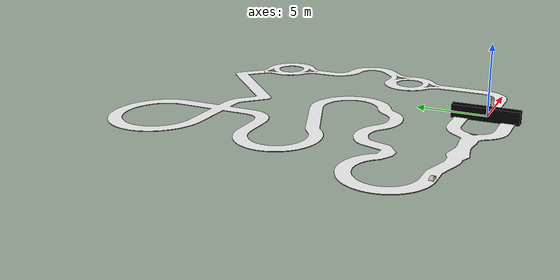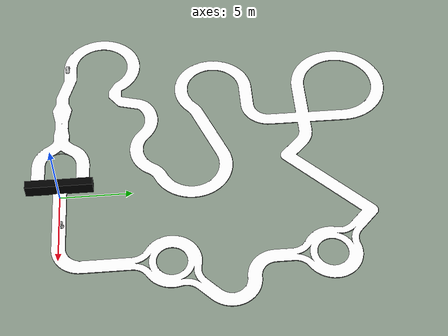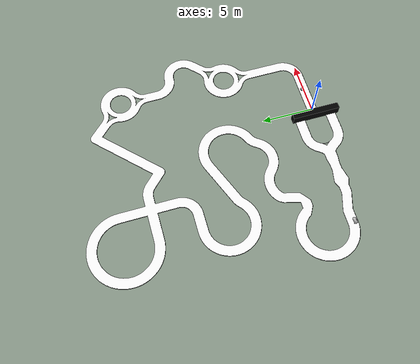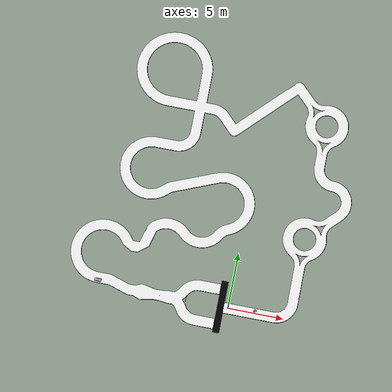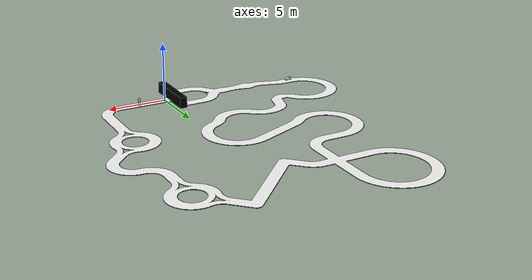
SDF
<?xml version="1.0"?>
<sdf version='1.10'>
  <world name='default'>
    <light type="directional" name="my_light">
        <pose>0 0 30 0 0 0</pose>
        <diffuse>1.0 1.0 1.0 1</diffuse>
        <specular>.1 .1 .1 1</specular>
        <attenuation>
            <range>100</range>
        </attenuation>
        <direction>0 0 -1</direction>
        <cast_shadows>true</cast_shadows>
    </light>
    <physics type='ode'>
      <max_step_size>0.0040000000000000001</max_step_size>
      <real_time_factor>1</real_time_factor>
      <real_time_update_rate>250</real_time_update_rate>
    </physics>
    <plugin name='gz::sim::systems::Physics' filename='gz-sim-physics-system'/>
    <plugin name='gz::sim::systems::UserCommands' filename='gz-sim-user-commands-system'/>
    <plugin name='gz::sim::systems::SceneBroadcaster' filename='gz-sim-scene-broadcaster-system'/>
    <plugin name='gz::sim::systems::Contact' filename='gz-sim-contact-system'/>
    <plugin name='gz::sim::systems::Imu' filename='gz-sim-imu-system'/>
    <plugin name='gz::sim::systems::Magnetometer' filename='gz-sim-magnetometer-system'/>
    <plugin name='gz::sim::systems::Altimeter' filename='gz-sim-altimeter-system'/>
    <plugin name='gz::sim::systems::NavSat' filename='gz-sim-navsat-system'/>
    <plugin name='gz::sim::systems::Sensors' filename='gz-sim-sensors-system'>
      <render_engine>ogre2</render_engine>
    </plugin>
    <gui fullscreen='false'>
      <plugin name='3D View' filename='GzScene3D'>
        <gz-gui>
          <title>3D View</title>
          <property type='bool' key='showTitleBar'>0</property>
          <property type='string' key='state'>docked</property>
        </gz-gui>
        <engine>ogre2</engine>
        <scene>scene</scene>
        <ambient_light>1.0 1.0 1.0</ambient_light>
        <background_color>1.0 1.0 1.0</background_color>
        <camera_pose>-6 0 6 0 0.5 0</camera_pose>
      </plugin>
      <plugin name='World control' filename='WorldControl'>
        <gz-gui>
          <title>World control</title>
          <property type='bool' key='showTitleBar'>0</property>
          <property type='bool' key='resizable'>0</property>
          <property type='double' key='height'>72</property>
          <property type='double' key='width'>121</property>
          <property type='double' key='z'>1</property>
          <property type='string' key='state'>floating</property>
          <anchors target='3D View'>
            <line own='left' target='left'/>
            <line own='bottom' target='bottom'/>
          </anchors>
        </gz-gui>
        <play_pause>1</play_pause>
        <step>1</step>
        <start_paused>1</start_paused>
      </plugin>
      <plugin name='World stats' filename='WorldStats'>
        <gz-gui>
          <title>World stats</title>
          <property type='bool' key='showTitleBar'>0</property>
          <property type='bool' key='resizable'>0</property>
          <property type='double' key='height'>110</property>
          <property type='double' key='width'>290</property>
          <property type='double' key='z'>1</property>
          <property type='string' key='state'>floating</property>
          <anchors target='3D View'>
            <line own='right' target='right'/>
            <line own='bottom' target='bottom'/>
          </anchors>
        </gz-gui>
        <sim_time>1</sim_time>
        <real_time>1</real_time>
        <real_time_factor>1</real_time_factor>
        <iterations>1</iterations>
      </plugin>
    </gui>
    <gravity>0 0 -9.8000000000000007</gravity>
    <magnetic_field>6.0000000000000002e-06 2.3e-05 -4.1999999999999998e-05</magnetic_field>
    <atmosphere type='adiabatic'/>
    <spherical_coordinates>
      <surface_model>EARTH_WGS84</surface_model>
      <latitude_deg>39.79480109851339</latitude_deg>
      <longitude_deg>-84.08631702793322</longitude_deg>
      <elevation>265.2</elevation>
      <heading_deg>0</heading_deg>
    </spherical_coordinates>
    <scene>
      <grid>false</grid>
    </scene>

    <include>
      <uri>
        models://NXP_AIM_S3_Qualifiers_Track
      </uri>
    </include>

    <include>
      <uri>
        models://fire_hydrant
      </uri>
    </include>

    <include>
      <uri>
        models://car
      </uri>
    </include>

  </world>
</sdf>

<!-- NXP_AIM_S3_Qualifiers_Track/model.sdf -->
<sdf version="1.10">
    <model name="NXP_AIM_S3_Qualifiers_Track">
        <static>false</static>
        <link name="main">
            <collision name="collision">
                <pose>0 0 0 0 0 0</pose>
                <geometry>
                    <plane>
                        <normal>0 0 1</normal>
                        <size>100 100</size>
                    </plane>
                </geometry>
            </collision>
            <visual name="NXP_AIM_S3_Qualifiers_Track">
                <pose>-4 -0.48 -0.065 0 0 0</pose>
                <geometry>
                    <mesh>
                        <scale>1 1 1</scale>
                        <uri>meshes/NXP_AIM_S3_Qualifiers_Track.dae</uri>
                    </mesh>
                </geometry>
            </visual>
        </link>

        <joint name="world_joint" type="fixed">
            <parent>world</parent>
            <child>main</child>
        </joint>
    </model>
</sdf>

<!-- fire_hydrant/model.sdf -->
<sdf version="1.5">
  <model name="fire_hydrant">
    <static>true</static>
    <link name="link">
      <collision name="collision">
        <pose>2.4 0.20 0 0 0 0</pose>
        <geometry>
          <mesh>
            <scale>0.75 0.75 0.75</scale>
            <uri>meshes/fire_hydrant.dae</uri>
          </mesh>
        </geometry>
      </collision>
      <visual name="visual">
        <pose>2.4 0.20 0 0 0 0</pose>
        <geometry>
          <mesh>
            <scale>0.75 0.75 0.75</scale>
            <uri>meshes/fire_hydrant.dae</uri>
          </mesh>
        </geometry>
      </visual>
    </link>
  </model>
</sdf>

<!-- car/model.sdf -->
<sdf version="1.6">
  <model name="car">
    <static>true</static>
    <link name="link">
      <collision name="collision">
        <pose>-12.0 0.35 0 0 0 1.57079632679</pose>
        <geometry>
          <mesh>
            <scale>0.004 0.004 0.004</scale>
            <uri>meshes/hatchback_grey.obj</uri>
          </mesh>
        </geometry>
      </collision>
      <visual name="visual">
        <pose>-12.0 0.35 0 0 0 1.57079632679</pose>
        <geometry>
          <mesh>
            <scale>0.004 0.004 0.004</scale>
            <uri>meshes/hatchback_grey.obj</uri>
          </mesh>
        </geometry>
      </visual>
    </link>
  </model>
</sdf>
